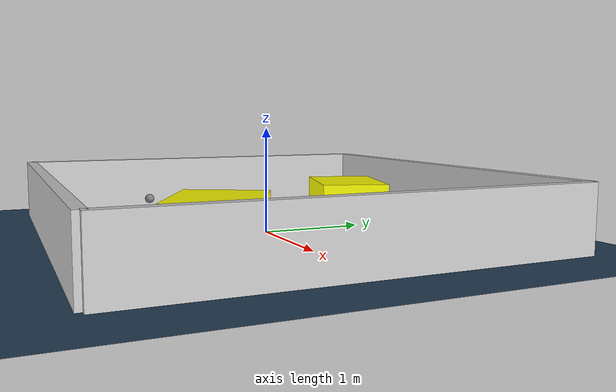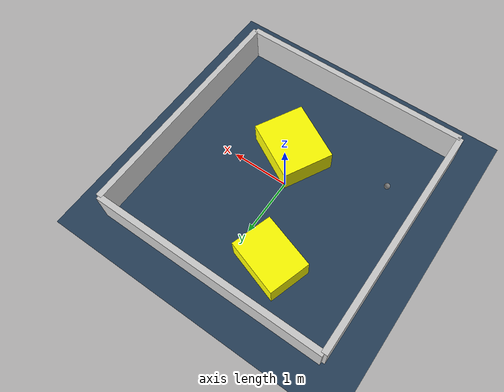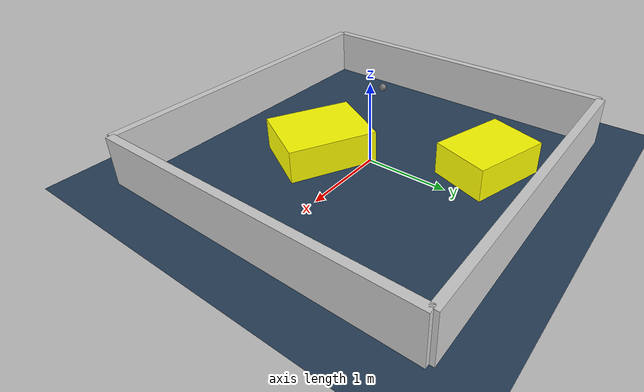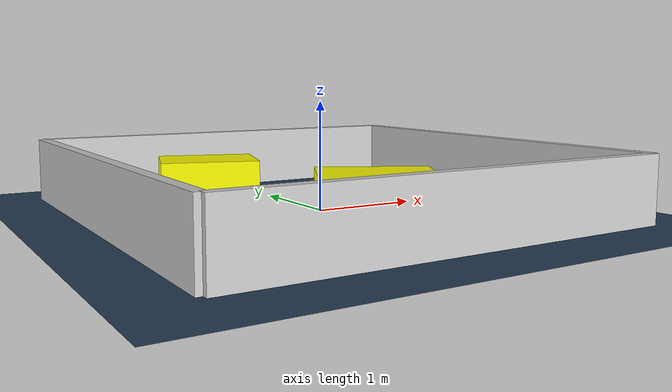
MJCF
<?xml version="1.0" ?>
<mujoco model="generated_environment">
  <option timestep="0.01" integrator="RK4" cone="elliptic"/>
  <default>
    <geom density="1"/>
  </default>
  <asset>
    <texture builtin="gradient" height="3072" rgb1="0.3 0.5 0.7" rgb2="0 0 0" type="skybox" width="512"/>
    <texture builtin="checker" height="300" mark="edge" markrgb="0.8 0.8 0.8" name="groundplane" rgb1="0.2 0.3 0.4" rgb2="0.1 0.2 0.3" type="2d" width="300"/>
    <material name="groundplane" reflectance="0.2" texrepeat="5 5" texture="groundplane" texuniform="true"/>
    <material name="robot" rgba="0.0 1.0 0.0 1"/>
  </asset>
  <worldbody>
    <light dir="0 0 -1" directional="true" pos="0 0 1.5"/>
    <geom condim="4" friction="1.0 0.005 0.001" material="groundplane" name="floor" size="0 0 0.05" type="plane"/>
    <body name="walls">
      <geom name="wall_1" condim="4" pos="-2.0 0.0 0.3" rgba="0.800000011920929 0.800000011920929 0.800000011920929 1.0" size="0.05 2.0 0.3" type="box"/>
      <geom name="wall_2" condim="4" pos="2.0 0.0 0.3" rgba="0.800000011920929 0.800000011920929 0.800000011920929 1.0" size="0.05 2.0 0.3" type="box"/>
      <geom name="wall_3" condim="4" pos="0.0 -2.0 0.3" rgba="0.800000011920929 0.800000011920929 0.800000011920929 1.0" size="2.0 0.05 0.3" type="box"/>
      <geom name="wall_4" condim="4" pos="0.0 2.0 0.3" rgba="0.800000011920929 0.800000011920929 0.800000011920929 1.0" size="2.0 0.05 0.3" type="box"/>
    </body>
    <body name="robot">
      <joint name="joint_x" type="slide" pos="0 0 0" axis="1 0 0"/>
      <joint name="joint_y" type="slide" pos="0 0 0" axis="0 1 0"/>
      <geom name="robot" type="sphere" pos="-1.4103531550593225 -0.8119735715758291 0.2" size="0.05" mass="5." friction="1.0 0.005 0.0001" condim="4"/>
      <site name="sensor_ball"/>
    </body>
    <body name="obstacle_1_movable">
      <geom name="obstacle_1_movable" condim="4" pos="-0.583750512910651 1.2247316798143029 0.2" euler="0 0 342.37190762879356" friction="1.0 0.005 0.001" rgba="1 1 0 1" size="0.47376666142299895 0.3487113920552169 0.2" type="box" mass="0.1"/>
      <joint type="free"/>
    </body>
    <body name="obstacle_2_movable">
      <geom name="obstacle_2_movable" condim="4" pos="0.23174111540208253 -0.5685718146013085 0.2" euler="0 0 241.82773811660763" friction="1.0 0.005 0.001" rgba="1 1 0 1" size="0.4311820753559298 0.5285733484350342 0.2" type="box" mass="0.1"/>
      <joint type="free"/>
    </body>
  </worldbody>
  <actuator>
    <motor name="actuator_x" joint="joint_x" gear="1" ctrlrange="-1 1"/>
    <motor name="actuator_y" joint="joint_y" gear="1" ctrlrange="-1 1"/>
  </actuator>
</mujoco>
